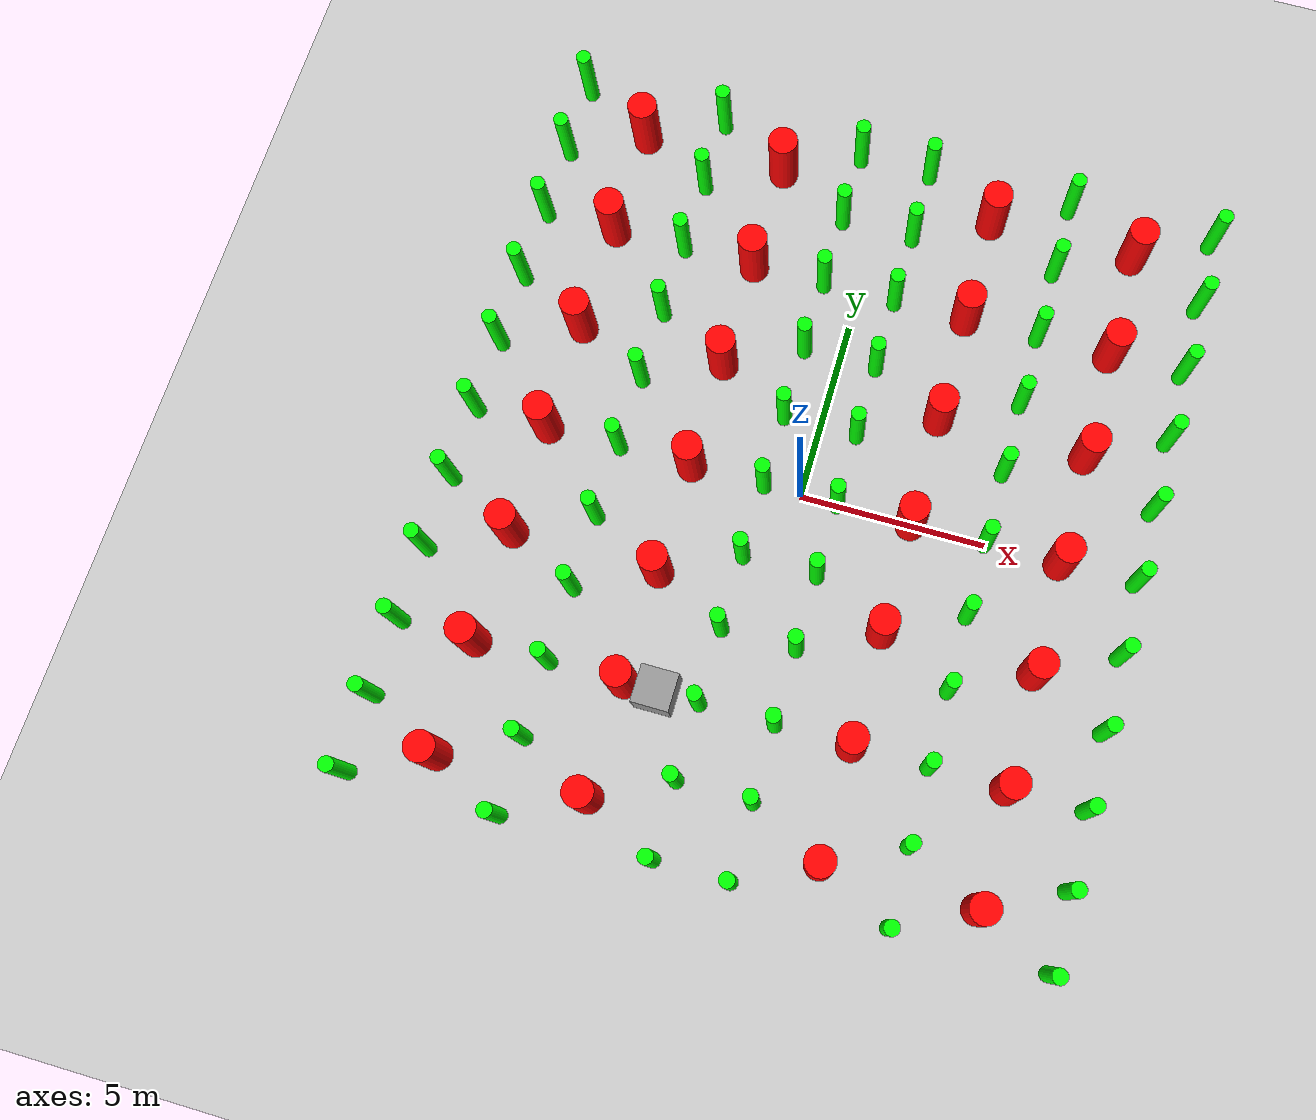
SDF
<sdf version="1.7">
 <world name="custom_grid">
  <light name="sun" type="directional">
   <pose>0 0 10 0 -0 0</pose>
   <diffuse>0.8 0.8 0.8 1</diffuse>
   <specular>0.2 0.2 0.2 1</specular>
   <attenuation>
    <range>1000</range>
    <constant>0.9</constant>
    <linear>0.01</linear>
    <quadratic>0.001</quadratic>
   </attenuation>
   <direction>-0.5 0.1 -0.9</direction>
   <spot><inner_angle>0</inner_angle><outer_angle>0</outer_angle><falloff>0</falloff></spot>
  </light>
  <model name="ground_plane">
   <static>1</static>
   <link name="link">
    <collision name="collision">
     <geometry><plane><normal>0 0 1</normal><size>100 100</size></plane></geometry>
     <surface><friction><ode><mu>100</mu><mu2>50</mu2></ode></friction></surface>
    </collision>
    <visual name="visual">
     <cast_shadows>0</cast_shadows>
     <geometry><plane><normal>0 0 1</normal><size>100 100</size></plane></geometry>
     <material>
      <script><uri>file://media/materials/scripts/gazebo.material</uri><name>Gazebo/Grey</name></script>
     </material>
    </visual>
   </link>
  </model>
  <model name="cylinder_green_-9_-10.0">
   <pose>-9 -10 1 0 -0 0</pose>
   <link name="link">
    <collision name="collision">
     <geometry><cylinder><radius>0.2</radius><length>2</length></cylinder></geometry>
    </collision>
    <visual name="visual">
     <geometry><cylinder><radius>0.2</radius><length>2</length></cylinder></geometry>
     <material><ambient>0 1 0 1</ambient><diffuse>0 1 0 1</diffuse></material>
    </visual>
   </link>
   <static>1</static>
  </model>
  <model name="cylinder_green_-9_-8.0">
   <pose>-9 -8 1 0 -0 0</pose>
   <link name="link">
    <collision name="collision">
     <geometry><cylinder><radius>0.2</radius><length>2</length></cylinder></geometry>
    </collision>
    <visual name="visual">
     <geometry><cylinder><radius>0.2</radius><length>2</length></cylinder></geometry>
     <material><ambient>0 1 0 1</ambient><diffuse>0 1 0 1</diffuse></material>
    </visual>
   </link>
   <static>1</static>
  </model>
  <model name="cylinder_green_-9_-6.0">
   <pose>-9 -6 1 0 -0 0</pose>
   <link name="link">
    <collision name="collision">
     <geometry><cylinder><radius>0.2</radius><length>2</length></cylinder></geometry>
    </collision>
    <visual name="visual">
     <geometry><cylinder><radius>0.2</radius><length>2</length></cylinder></geometry>
     <material><ambient>0 1 0 1</ambient><diffuse>0 1 0 1</diffuse></material>
    </visual>
   </link>
   <static>1</static>
  </model>
  <model name="cylinder_green_-9_-4.0">
   <pose>-9 -4 1 0 -0 0</pose>
   <link name="link">
    <collision name="collision">
     <geometry><cylinder><radius>0.2</radius><length>2</length></cylinder></geometry>
    </collision>
    <visual name="visual">
     <geometry><cylinder><radius>0.2</radius><length>2</length></cylinder></geometry>
     <material><ambient>0 1 0 1</ambient><diffuse>0 1 0 1</diffuse></material>
    </visual>
   </link>
   <static>1</static>
  </model>
  <model name="cylinder_green_-9_-2.0">
   <pose>-9 -2 1 0 -0 0</pose>
   <link name="link">
    <collision name="collision">
     <geometry><cylinder><radius>0.2</radius><length>2</length></cylinder></geometry>
    </collision>
    <visual name="visual">
     <geometry><cylinder><radius>0.2</radius><length>2</length></cylinder></geometry>
     <material><ambient>0 1 0 1</ambient><diffuse>0 1 0 1</diffuse></material>
    </visual>
   </link>
   <static>1</static>
  </model>
  <model name="cylinder_green_-9_0.0">
   <pose>-9 0 1 0 -0 0</pose>
   <link name="link">
    <collision name="collision">
     <geometry><cylinder><radius>0.2</radius><length>2</length></cylinder></geometry>
    </collision>
    <visual name="visual">
     <geometry><cylinder><radius>0.2</radius><length>2</length></cylinder></geometry>
     <material><ambient>0 1 0 1</ambient><diffuse>0 1 0 1</diffuse></material>
    </visual>
   </link>
   <static>1</static>
  </model>
  <model name="cylinder_green_-9_2.0">
   <pose>-9 2 1 0 -0 0</pose>
   <link name="link">
    <collision name="collision">
     <geometry><cylinder><radius>0.2</radius><length>2</length></cylinder></geometry>
    </collision>
    <visual name="visual">
     <geometry><cylinder><radius>0.2</radius><length>2</length></cylinder></geometry>
     <material><ambient>0 1 0 1</ambient><diffuse>0 1 0 1</diffuse></material>
    </visual>
   </link>
   <static>1</static>
  </model>
  <model name="cylinder_green_-9_4.0">
   <pose>-9 4 1 0 -0 0</pose>
   <link name="link">
    <collision name="collision">
     <geometry><cylinder><radius>0.2</radius><length>2</length></cylinder></geometry>
    </collision>
    <visual name="visual">
     <geometry><cylinder><radius>0.2</radius><length>2</length></cylinder></geometry>
     <material><ambient>0 1 0 1</ambient><diffuse>0 1 0 1</diffuse></material>
    </visual>
   </link>
   <static>1</static>
  </model>
  <model name="cylinder_green_-9_6.0">
   <pose>-9 6 1 0 -0 0</pose>
   <link name="link">
    <collision name="collision">
     <geometry><cylinder><radius>0.2</radius><length>2</length></cylinder></geometry>
    </collision>
    <visual name="visual">
     <geometry><cylinder><radius>0.2</radius><length>2</length></cylinder></geometry>
     <material><ambient>0 1 0 1</ambient><diffuse>0 1 0 1</diffuse></material>
    </visual>
   </link>
   <static>1</static>
  </model>
  <model name="cylinder_green_-9_8.0">
   <pose>-9 8 1 0 -0 0</pose>
   <link name="link">
    <collision name="collision">
     <geometry><cylinder><radius>0.2</radius><length>2</length></cylinder></geometry>
    </collision>
    <visual name="visual">
     <geometry><cylinder><radius>0.2</radius><length>2</length></cylinder></geometry>
     <material><ambient>0 1 0 1</ambient><diffuse>0 1 0 1</diffuse></material>
    </visual>
   </link>
   <static>1</static>
  </model>
  <model name="cylinder_green_-9_10.0">
   <pose>-9 10 1 0 -0 0</pose>
   <link name="link">
    <collision name="collision">
     <geometry><cylinder><radius>0.2</radius><length>2</length></cylinder></geometry>
    </collision>
    <visual name="visual">
     <geometry><cylinder><radius>0.2</radius><length>2</length></cylinder></geometry>
     <material><ambient>0 1 0 1</ambient><diffuse>0 1 0 1</diffuse></material>
    </visual>
   </link>
   <static>1</static>
  </model>
  <model name="cylinder_green_-5_-10.0">
   <pose>-5 -10 1 0 -0 0</pose>
   <link name="link">
    <collision name="collision">
     <geometry><cylinder><radius>0.2</radius><length>2</length></cylinder></geometry>
    </collision>
    <visual name="visual">
     <geometry><cylinder><radius>0.2</radius><length>2</length></cylinder></geometry>
     <material><ambient>0 1 0 1</ambient><diffuse>0 1 0 1</diffuse></material>
    </visual>
   </link>
   <static>1</static>
  </model>
  <model name="cylinder_green_-5_-8.0">
   <pose>-5 -8 1 0 -0 0</pose>
   <link name="link">
    <collision name="collision">
     <geometry><cylinder><radius>0.2</radius><length>2</length></cylinder></geometry>
    </collision>
    <visual name="visual">
     <geometry><cylinder><radius>0.2</radius><length>2</length></cylinder></geometry>
     <material><ambient>0 1 0 1</ambient><diffuse>0 1 0 1</diffuse></material>
    </visual>
   </link>
   <static>1</static>
  </model>
  <model name="cylinder_green_-5_-6.0">
   <pose>-5 -6 1 0 -0 0</pose>
   <link name="link">
    <collision name="collision">
     <geometry><cylinder><radius>0.2</radius><length>2</length></cylinder></geometry>
    </collision>
    <visual name="visual">
     <geometry><cylinder><radius>0.2</radius><length>2</length></cylinder></geometry>
     <material><ambient>0 1 0 1</ambient><diffuse>0 1 0 1</diffuse></material>
    </visual>
   </link>
   <static>1</static>
  </model>
  <model name="cylinder_green_-5_-4.0">
   <pose>-5 -4 1 0 -0 0</pose>
   <link name="link">
    <collision name="collision">
     <geometry><cylinder><radius>0.2</radius><length>2</length></cylinder></geometry>
    </collision>
    <visual name="visual">
     <geometry><cylinder><radius>0.2</radius><length>2</length></cylinder></geometry>
     <material><ambient>0 1 0 1</ambient><diffuse>0 1 0 1</diffuse></material>
    </visual>
   </link>
   <static>1</static>
  </model>
  <model name="cylinder_green_-5_-2.0">
   <pose>-5 -2 1 0 -0 0</pose>
   <link name="link">
    <collision name="collision">
     <geometry><cylinder><radius>0.2</radius><length>2</length></cylinder></geometry>
    </collision>
    <visual name="visual">
     <geometry><cylinder><radius>0.2</radius><length>2</length></cylinder></geometry>
     <material><ambient>0 1 0 1</ambient><diffuse>0 1 0 1</diffuse></material>
    </visual>
   </link>
   <static>1</static>
  </model>
  <model name="cylinder_green_-5_0.0">
   <pose>-5 0 1 0 -0 0</pose>
   <link name="link">
    <collision name="collision">
     <geometry><cylinder><radius>0.2</radius><length>2</length></cylinder></geometry>
    </collision>
    <visual name="visual">
     <geometry><cylinder><radius>0.2</radius><length>2</length></cylinder></geometry>
     <material><ambient>0 1 0 1</ambient><diffuse>0 1 0 1</diffuse></material>
    </visual>
   </link>
   <static>1</static>
  </model>
  <model name="cylinder_green_-5_2.0">
   <pose>-5 2 1 0 -0 0</pose>
   <link name="link">
    <collision name="collision">
     <geometry><cylinder><radius>0.2</radius><length>2</length></cylinder></geometry>
    </collision>
    <visual name="visual">
     <geometry><cylinder><radius>0.2</radius><length>2</length></cylinder></geometry>
     <material><ambient>0 1 0 1</ambient><diffuse>0 1 0 1</diffuse></material>
    </visual>
   </link>
   <static>1</static>
  </model>
  <model name="cylinder_green_-5_4.0">
   <pose>-5 4 1 0 -0 0</pose>
   <link name="link">
    <collision name="collision">
     <geometry><cylinder><radius>0.2</radius><length>2</length></cylinder></geometry>
    </collision>
    <visual name="visual">
     <geometry><cylinder><radius>0.2</radius><length>2</length></cylinder></geometry>
     <material><ambient>0 1 0 1</ambient><diffuse>0 1 0 1</diffuse></material>
    </visual>
   </link>
   <static>1</static>
  </model>
  <model name="cylinder_green_-5_6.0">
   <pose>-5 6 1 0 -0 0</pose>
   <link name="link">
    <collision name="collision">
     <geometry><cylinder><radius>0.2</radius><length>2</length></cylinder></geometry>
    </collision>
    <visual name="visual">
     <geometry><cylinder><radius>0.2</radius><length>2</length></cylinder></geometry>
     <material><ambient>0 1 0 1</ambient><diffuse>0 1 0 1</diffuse></material>
    </visual>
   </link>
   <static>1</static>
  </model>
  <model name="cylinder_green_-5_8.0">
   <pose>-5 8 1 0 -0 0</pose>
   <link name="link">
    <collision name="collision">
     <geometry><cylinder><radius>0.2</radius><length>2</length></cylinder></geometry>
    </collision>
    <visual name="visual">
     <geometry><cylinder><radius>0.2</radius><length>2</length></cylinder></geometry>
     <material><ambient>0 1 0 1</ambient><diffuse>0 1 0 1</diffuse></material>
    </visual>
   </link>
   <static>1</static>
  </model>
  <model name="cylinder_green_-5_10.0">
   <pose>-5 10 1 0 -0 0</pose>
   <link name="link">
    <collision name="collision">
     <geometry><cylinder><radius>0.2</radius><length>2</length></cylinder></geometry>
    </collision>
    <visual name="visual">
     <geometry><cylinder><radius>0.2</radius><length>2</length></cylinder></geometry>
     <material><ambient>0 1 0 1</ambient><diffuse>0 1 0 1</diffuse></material>
    </visual>
   </link>
   <static>1</static>
  </model>
  <model name="cylinder_green_-1_-10.0">
   <pose>-1 -10 1 0 -0 0</pose>
   <link name="link">
    <collision name="collision">
     <geometry><cylinder><radius>0.2</radius><length>2</length></cylinder></geometry>
    </collision>
    <visual name="visual">
     <geometry><cylinder><radius>0.2</radius><length>2</length></cylinder></geometry>
     <material><ambient>0 1 0 1</ambient><diffuse>0 1 0 1</diffuse></material>
    </visual>
   </link>
   <static>1</static>
  </model>
  <model name="cylinder_green_-1_-8.0">
   <pose>-1 -8 1 0 -0 0</pose>
   <link name="link">
    <collision name="collision">
     <geometry><cylinder><radius>0.2</radius><length>2</length></cylinder></geometry>
    </collision>
    <visual name="visual">
     <geometry><cylinder><radius>0.2</radius><length>2</length></cylinder></geometry>
     <material><ambient>0 1 0 1</ambient><diffuse>0 1 0 1</diffuse></material>
    </visual>
   </link>
   <static>1</static>
  </model>
  <model name="cylinder_green_-1_-6.0">
   <pose>-1 -6 1 0 -0 0</pose>
   <link name="link">
    <collision name="collision">
     <geometry><cylinder><radius>0.2</radius><length>2</length></cylinder></geometry>
    </collision>
    <visual name="visual">
     <geometry><cylinder><radius>0.2</radius><length>2</length></cylinder></geometry>
     <material><ambient>0 1 0 1</ambient><diffuse>0 1 0 1</diffuse></material>
    </visual>
   </link>
   <static>1</static>
  </model>
  <model name="cylinder_green_-1_-4.0">
   <pose>-1 -4 1 0 -0 0</pose>
   <link name="link">
    <collision name="collision">
     <geometry><cylinder><radius>0.2</radius><length>2</length></cylinder></geometry>
    </collision>
    <visual name="visual">
     <geometry><cylinder><radius>0.2</radius><length>2</length></cylinder></geometry>
     <material><ambient>0 1 0 1</ambient><diffuse>0 1 0 1</diffuse></material>
    </visual>
   </link>
   <static>1</static>
  </model>
  <model name="cylinder_green_-1_-2.0">
   <pose>-1 -2 1 0 -0 0</pose>
   <link name="link">
    <collision name="collision">
     <geometry><cylinder><radius>0.2</radius><length>2</length></cylinder></geometry>
    </collision>
    <visual name="visual">
     <geometry><cylinder><radius>0.2</radius><length>2</length></cylinder></geometry>
     <material><ambient>0 1 0 1</ambient><diffuse>0 1 0 1</diffuse></material>
    </visual>
   </link>
   <static>1</static>
  </model>
  <model name="cylinder_green_-1_0.0">
   <pose>-1 0 1 0 -0 0</pose>
   <link name="link">
    <collision name="collision">
     <geometry><cylinder><radius>0.2</radius><length>2</length></cylinder></geometry>
    </collision>
    <visual name="visual">
     <geometry><cylinder><radius>0.2</radius><length>2</length></cylinder></geometry>
     <material><ambient>0 1 0 1</ambient><diffuse>0 1 0 1</diffuse></material>
    </visual>
   </link>
   <static>1</static>
  </model>
  <model name="cylinder_green_-1_2.0">
   <pose>-1 2 1 0 -0 0</pose>
   <link name="link">
    <collision name="collision">
     <geometry><cylinder><radius>0.2</radius><length>2</length></cylinder></geometry>
    </collision>
    <visual name="visual">
     <geometry><cylinder><radius>0.2</radius><length>2</length></cylinder></geometry>
     <material><ambient>0 1 0 1</ambient><diffuse>0 1 0 1</diffuse></material>
    </visual>
   </link>
   <static>1</static>
  </model>
  <model name="cylinder_green_-1_4.0">
   <pose>-1 4 1 0 -0 0</pose>
   <link name="link">
    <collision name="collision">
     <geometry><cylinder><radius>0.2</radius><length>2</length></cylinder></geometry>
    </collision>
    <visual name="visual">
     <geometry><cylinder><radius>0.2</radius><length>2</length></cylinder></geometry>
     <material><ambient>0 1 0 1</ambient><diffuse>0 1 0 1</diffuse></material>
    </visual>
   </link>
   <static>1</static>
  </model>
  <model name="cylinder_green_-1_6.0">
   <pose>-1 6 1 0 -0 0</pose>
   <link name="link">
    <collision name="collision">
     <geometry><cylinder><radius>0.2</radius><length>2</length></cylinder></geometry>
    </collision>
    <visual name="visual">
     <geometry><cylinder><radius>0.2</radius><length>2</length></cylinder></geometry>
     <material><ambient>0 1 0 1</ambient><diffuse>0 1 0 1</diffuse></material>
    </visual>
   </link>
   <static>1</static>
  </model>
  <model name="cylinder_green_-1_8.0">
   <pose>-1 8 1 0 -0 0</pose>
   <link name="link">
    <collision name="collision">
     <geometry><cylinder><radius>0.2</radius><length>2</length></cylinder></geometry>
    </collision>
    <visual name="visual">
     <geometry><cylinder><radius>0.2</radius><length>2</length></cylinder></geometry>
     <material><ambient>0 1 0 1</ambient><diffuse>0 1 0 1</diffuse></material>
    </visual>
   </link>
   <static>1</static>
  </model>
  <model name="cylinder_green_-1_10.0">
   <pose>-1 10 1 0 -0 0</pose>
   <link name="link">
    <collision name="collision">
     <geometry><cylinder><radius>0.2</radius><length>2</length></cylinder></geometry>
    </collision>
    <visual name="visual">
     <geometry><cylinder><radius>0.2</radius><length>2</length></cylinder></geometry>
     <material><ambient>0 1 0 1</ambient><diffuse>0 1 0 1</diffuse></material>
    </visual>
   </link>
   <static>1</static>
  </model>
  <model name="cylinder_green_1_-10.0">
   <pose>1 -10 1 0 -0 0</pose>
   <link name="link">
    <collision name="collision">
     <geometry><cylinder><radius>0.2</radius><length>2</length></cylinder></geometry>
    </collision>
    <visual name="visual">
     <geometry><cylinder><radius>0.2</radius><length>2</length></cylinder></geometry>
     <material><ambient>0 1 0 1</ambient><diffuse>0 1 0 1</diffuse></material>
    </visual>
   </link>
   <static>1</static>
  </model>
  <model name="cylinder_green_1_-8.0">
   <pose>1 -8 1 0 -0 0</pose>
   <link name="link">
    <collision name="collision">
     <geometry><cylinder><radius>0.2</radius><length>2</length></cylinder></geometry>
    </collision>
    <visual name="visual">
     <geometry><cylinder><radius>0.2</radius><length>2</length></cylinder></geometry>
     <material><ambient>0 1 0 1</ambient><diffuse>0 1 0 1</diffuse></material>
    </visual>
   </link>
   <static>1</static>
  </model>
  <model name="cylinder_green_1_-6.0">
   <pose>1 -6 1 0 -0 0</pose>
   <link name="link">
    <collision name="collision">
     <geometry><cylinder><radius>0.2</radius><length>2</length></cylinder></geometry>
    </collision>
    <visual name="visual">
     <geometry><cylinder><radius>0.2</radius><length>2</length></cylinder></geometry>
     <material><ambient>0 1 0 1</ambient><diffuse>0 1 0 1</diffuse></material>
    </visual>
   </link>
   <static>1</static>
  </model>
  <model name="cylinder_green_1_-4.0">
   <pose>1 -4 1 0 -0 0</pose>
   <link name="link">
    <collision name="collision">
     <geometry><cylinder><radius>0.2</radius><length>2</length></cylinder></geometry>
    </collision>
    <visual name="visual">
     <geometry><cylinder><radius>0.2</radius><length>2</length></cylinder></geometry>
     <material><ambient>0 1 0 1</ambient><diffuse>0 1 0 1</diffuse></material>
    </visual>
   </link>
   <static>1</static>
  </model>
  <model name="cylinder_green_1_-2.0">
   <pose>1 -2 1 0 -0 0</pose>
   <link name="link">
    <collision name="collision">
     <geometry><cylinder><radius>0.2</radius><length>2</length></cylinder></geometry>
    </collision>
    <visual name="visual">
     <geometry><cylinder><radius>0.2</radius><length>2</length></cylinder></geometry>
     <material><ambient>0 1 0 1</ambient><diffuse>0 1 0 1</diffuse></material>
    </visual>
   </link>
   <static>1</static>
  </model>
  <model name="cylinder_green_1_0.0">
   <pose>1 0 1 0 -0 0</pose>
   <link name="link">
    <collision name="collision">
     <geometry><cylinder><radius>0.2</radius><length>2</length></cylinder></geometry>
    </collision>
    <visual name="visual">
     <geometry><cylinder><radius>0.2</radius><length>2</length></cylinder></geometry>
     <material><ambient>0 1 0 1</ambient><diffuse>0 1 0 1</diffuse></material>
    </visual>
   </link>
   <static>1</static>
  </model>
  <model name="cylinder_green_1_2.0">
   <pose>1 2 1 0 -0 0</pose>
   <link name="link">
    <collision name="collision">
     <geometry><cylinder><radius>0.2</radius><length>2</length></cylinder></geometry>
    </collision>
    <visual name="visual">
     <geometry><cylinder><radius>0.2</radius><length>2</length></cylinder></geometry>
     <material><ambient>0 1 0 1</ambient><diffuse>0 1 0 1</diffuse></material>
    </visual>
   </link>
   <static>1</static>
  </model>
  <model name="cylinder_green_1_4.0">
   <pose>1 4 1 0 -0 0</pose>
   <link name="link">
    <collision name="collision">
     <geometry><cylinder><radius>0.2</radius><length>2</length></cylinder></geometry>
    </collision>
    <visual name="visual">
     <geometry><cylinder><radius>0.2</radius><length>2</length></cylinder></geometry>
     <material><ambient>0 1 0 1</ambient><diffuse>0 1 0 1</diffuse></material>
    </visual>
   </link>
   <static>1</static>
  </model>
  <model name="cylinder_green_1_6.0">
   <pose>1 6 1 0 -0 0</pose>
   <link name="link">
    <collision name="collision">
     <geometry><cylinder><radius>0.2</radius><length>2</length></cylinder></geometry>
    </collision>
    <visual name="visual">
     <geometry><cylinder><radius>0.2</radius><length>2</length></cylinder></geometry>
     <material><ambient>0 1 0 1</ambient><diffuse>0 1 0 1</diffuse></material>
    </visual>
   </link>
   <static>1</static>
  </model>
  <model name="cylinder_green_1_8.0">
   <pose>1 8 1 0 -0 0</pose>
   <link name="link">
    <collision name="collision">
     <geometry><cylinder><radius>0.2</radius><length>2</length></cylinder></geometry>
    </collision>
    <visual name="visual">
     <geometry><cylinder><radius>0.2</radius><length>2</length></cylinder></geometry>
     <material><ambient>0 1 0 1</ambient><diffuse>0 1 0 1</diffuse></material>
    </visual>
   </link>
   <static>1</static>
  </model>
  <model name="cylinder_green_1_10.0">
   <pose>1 10 1 0 -0 0</pose>
   <link name="link">
    <collision name="collision">
     <geometry><cylinder><radius>0.2</radius><length>2</length></cylinder></geometry>
    </collision>
    <visual name="visual">
     <geometry><cylinder><radius>0.2</radius><length>2</length></cylinder></geometry>
     <material><ambient>0 1 0 1</ambient><diffuse>0 1 0 1</diffuse></material>
    </visual>
   </link>
   <static>1</static>
  </model>
  <model name="cylinder_green_5_-10.0">
   <pose>5 -10 1 0 -0 0</pose>
   <link name="link">
    <collision name="collision">
     <geometry><cylinder><radius>0.2</radius><length>2</length></cylinder></geometry>
    </collision>
    <visual name="visual">
     <geometry><cylinder><radius>0.2</radius><length>2</length></cylinder></geometry>
     <material><ambient>0 1 0 1</ambient><diffuse>0 1 0 1</diffuse></material>
    </visual>
   </link>
   <static>1</static>
  </model>
  <model name="cylinder_green_5_-8.0">
   <pose>5 -8 1 0 -0 0</pose>
   <link name="link">
    <collision name="collision">
     <geometry><cylinder><radius>0.2</radius><length>2</length></cylinder></geometry>
    </collision>
    <visual name="visual">
     <geometry><cylinder><radius>0.2</radius><length>2</length></cylinder></geometry>
     <material><ambient>0 1 0 1</ambient><diffuse>0 1 0 1</diffuse></material>
    </visual>
   </link>
   <static>1</static>
  </model>
  <model name="cylinder_green_5_-6.0">
   <pose>5 -6 1 0 -0 0</pose>
   <link name="link">
    <collision name="collision">
     <geometry><cylinder><radius>0.2</radius><length>2</length></cylinder></geometry>
    </collision>
    <visual name="visual">
     <geometry><cylinder><radius>0.2</radius><length>2</length></cylinder></geometry>
     <material><ambient>0 1 0 1</ambient><diffuse>0 1 0 1</diffuse></material>
    </visual>
   </link>
   <static>1</static>
  </model>
  <model name="cylinder_green_5_-4.0">
   <pose>5 -4 1 0 -0 0</pose>
   <link name="link">
    <collision name="collision">
     <geometry><cylinder><radius>0.2</radius><length>2</length></cylinder></geometry>
    </collision>
    <visual name="visual">
     <geometry><cylinder><radius>0.2</radius><length>2</length></cylinder></geometry>
     <material><ambient>0 1 0 1</ambient><diffuse>0 1 0 1</diffuse></material>
    </visual>
   </link>
   <static>1</static>
  </model>
  <model name="cylinder_green_5_-2.0">
   <pose>5 -2 1 0 -0 0</pose>
   <link name="link">
    <collision name="collision">
     <geometry><cylinder><radius>0.2</radius><length>2</length></cylinder></geometry>
    </collision>
    <visual name="visual">
     <geometry><cylinder><radius>0.2</radius><length>2</length></cylinder></geometry>
     <material><ambient>0 1 0 1</ambient><diffuse>0 1 0 1</diffuse></material>
    </visual>
   </link>
   <static>1</static>
  </model>
  <model name="cylinder_green_5_0.0">
   <pose>5 0 1 0 -0 0</pose>
   <link name="link">
    <collision name="collision">
     <geometry><cylinder><radius>0.2</radius><length>2</length></cylinder></geometry>
    </collision>
    <visual name="visual">
     <geometry><cylinder><radius>0.2</radius><length>2</length></cylinder></geometry>
     <material><ambient>0 1 0 1</ambient><diffuse>0 1 0 1</diffuse></material>
    </visual>
   </link>
   <static>1</static>
  </model>
  <model name="cylinder_green_5_2.0">
   <pose>5 2 1 0 -0 0</pose>
   <link name="link">
    <collision name="collision">
     <geometry><cylinder><radius>0.2</radius><length>2</length></cylinder></geometry>
    </collision>
    <visual name="visual">
     <geometry><cylinder><radius>0.2</radius><length>2</length></cylinder></geometry>
     <material><ambient>0 1 0 1</ambient><diffuse>0 1 0 1</diffuse></material>
    </visual>
   </link>
   <static>1</static>
  </model>
  <model name="cylinder_green_5_4.0">
   <pose>5 4 1 0 -0 0</pose>
   <link name="link">
    <collision name="collision">
     <geometry><cylinder><radius>0.2</radius><length>2</length></cylinder></geometry>
    </collision>
    <visual name="visual">
     <geometry><cylinder><radius>0.2</radius><length>2</length></cylinder></geometry>
     <material><ambient>0 1 0 1</ambient><diffuse>0 1 0 1</diffuse></material>
    </visual>
   </link>
   <static>1</static>
  </model>
  <model name="cylinder_green_5_6.0">
   <pose>5 6 1 0 -0 0</pose>
   <link name="link">
    <collision name="collision">
     <geometry><cylinder><radius>0.2</radius><length>2</length></cylinder></geometry>
    </collision>
    <visual name="visual">
     <geometry><cylinder><radius>0.2</radius><length>2</length></cylinder></geometry>
     <material><ambient>0 1 0 1</ambient><diffuse>0 1 0 1</diffuse></material>
    </visual>
   </link>
   <static>1</static>
  </model>
  <model name="cylinder_green_5_8.0">
   <pose>5 8 1 0 -0 0</pose>
   <link name="link">
    <collision name="collision">
     <geometry><cylinder><radius>0.2</radius><length>2</length></cylinder></geometry>
    </collision>
    <visual name="visual">
     <geometry><cylinder><radius>0.2</radius><length>2</length></cylinder></geometry>
     <material><ambient>0 1 0 1</ambient><diffuse>0 1 0 1</diffuse></material>
    </visual>
   </link>
   <static>1</static>
  </model>
  <model name="cylinder_green_5_10.0">
   <pose>5 10 1 0 -0 0</pose>
   <link name="link">
    <collision name="collision">
     <geometry><cylinder><radius>0.2</radius><length>2</length></cylinder></geometry>
    </collision>
    <visual name="visual">
     <geometry><cylinder><radius>0.2</radius><length>2</length></cylinder></geometry>
     <material><ambient>0 1 0 1</ambient><diffuse>0 1 0 1</diffuse></material>
    </visual>
   </link>
   <static>1</static>
  </model>
  <model name="cylinder_green_9_-10.0">
   <pose>9 -10 1 0 -0 0</pose>
   <link name="link">
    <collision name="collision">
     <geometry><cylinder><radius>0.2</radius><length>2</length></cylinder></geometry>
    </collision>
    <visual name="visual">
     <geometry><cylinder><radius>0.2</radius><length>2</length></cylinder></geometry>
     <material><ambient>0 1 0 1</ambient><diffuse>0 1 0 1</diffuse></material>
    </visual>
   </link>
   <static>1</static>
  </model>
  <model name="cylinder_green_9_-8.0">
   <pose>9 -8 1 0 -0 0</pose>
   <link name="link">
    <collision name="collision">
     <geometry><cylinder><radius>0.2</radius><length>2</length></cylinder></geometry>
    </collision>
    <visual name="visual">
     <geometry><cylinder><radius>0.2</radius><length>2</length></cylinder></geometry>
     <material><ambient>0 1 0 1</ambient><diffuse>0 1 0 1</diffuse></material>
    </visual>
   </link>
   <static>1</static>
  </model>
  <model name="cylinder_green_9_-6.0">
   <pose>9 -6 1 0 -0 0</pose>
   <link name="link">
    <collision name="collision">
     <geometry><cylinder><radius>0.2</radius><length>2</length></cylinder></geometry>
    </collision>
    <visual name="visual">
     <geometry><cylinder><radius>0.2</radius><length>2</length></cylinder></geometry>
     <material><ambient>0 1 0 1</ambient><diffuse>0 1 0 1</diffuse></material>
    </visual>
   </link>
   <static>1</static>
  </model>
  <model name="cylinder_green_9_-4.0">
   <pose>9 -4 1 0 -0 0</pose>
   <link name="link">
    <collision name="collision">
     <geometry><cylinder><radius>0.2</radius><length>2</length></cylinder></geometry>
    </collision>
    <visual name="visual">
     <geometry><cylinder><radius>0.2</radius><length>2</length></cylinder></geometry>
     <material><ambient>0 1 0 1</ambient><diffuse>0 1 0 1</diffuse></material>
    </visual>
   </link>
   <static>1</static>
  </model>
  <model name="cylinder_green_9_-2.0">
   <pose>9 -2 1 0 -0 0</pose>
   <link name="link">
    <collision name="collision">
     <geometry><cylinder><radius>0.2</radius><length>2</length></cylinder></geometry>
    </collision>
    <visual name="visual">
     <geometry><cylinder><radius>0.2</radius><length>2</length></cylinder></geometry>
     <material><ambient>0 1 0 1</ambient><diffuse>0 1 0 1</diffuse></material>
    </visual>
   </link>
   <static>1</static>
  </model>
  <model name="cylinder_green_9_0.0">
   <pose>9 0 1 0 -0 0</pose>
   <link name="link">
    <collision name="collision">
     <geometry><cylinder><radius>0.2</radius><length>2</length></cylinder></geometry>
    </collision>
    <visual name="visual">
     <geometry><cylinder><radius>0.2</radius><length>2</length></cylinder></geometry>
     <material><ambient>0 1 0 1</ambient><diffuse>0 1 0 1</diffuse></material>
    </visual>
   </link>
   <static>1</static>
  </model>
  <model name="cylinder_green_9_2.0">
   <pose>9 2 1 0 -0 0</pose>
   <link name="link">
    <collision name="collision">
     <geometry><cylinder><radius>0.2</radius><length>2</length></cylinder></geometry>
    </collision>
    <visual name="visual">
     <geometry><cylinder><radius>0.2</radius><length>2</length></cylinder></geometry>
     <material><ambient>0 1 0 1</ambient><diffuse>0 1 0 1</diffuse></material>
    </visual>
   </link>
   <static>1</static>
  </model>
  <model name="cylinder_green_9_4.0">
   <pose>9 4 1 0 -0 0</pose>
   <link name="link">
    <collision name="collision">
     <geometry><cylinder><radius>0.2</radius><length>2</length></cylinder></geometry>
    </collision>
    <visual name="visual">
     <geometry><cylinder><radius>0.2</radius><length>2</length></cylinder></geometry>
     <material><ambient>0 1 0 1</ambient><diffuse>0 1 0 1</diffuse></material>
    </visual>
   </link>
   <static>1</static>
  </model>
  <model name="cylinder_green_9_6.0">
   <pose>9 6 1 0 -0 0</pose>
   <link name="link">
    <collision name="collision">
     <geometry><cylinder><radius>0.2</radius><length>2</length></cylinder></geometry>
    </collision>
    <visual name="visual">
     <geometry><cylinder><radius>0.2</radius><length>2</length></cylinder></geometry>
     <material><ambient>0 1 0 1</ambient><diffuse>0 1 0 1</diffuse></material>
    </visual>
   </link>
   <static>1</static>
  </model>
  <model name="cylinder_green_9_8.0">
   <pose>9 8 1 0 -0 0</pose>
   <link name="link">
    <collision name="collision">
     <geometry><cylinder><radius>0.2</radius><length>2</length></cylinder></geometry>
    </collision>
    <visual name="visual">
     <geometry><cylinder><radius>0.2</radius><length>2</length></cylinder></geometry>
     <material><ambient>0 1 0 1</ambient><diffuse>0 1 0 1</diffuse></material>
    </visual>
   </link>
   <static>1</static>
  </model>
  <model name="cylinder_green_9_10.0">
   <pose>9 10 1 0 -0 0</pose>
   <link name="link">
    <collision name="collision">
     <geometry><cylinder><radius>0.2</radius><length>2</length></cylinder></geometry>
    </collision>
    <visual name="visual">
     <geometry><cylinder><radius>0.2</radius><length>2</length></cylinder></geometry>
     <material><ambient>0 1 0 1</ambient><diffuse>0 1 0 1</diffuse></material>
    </visual>
   </link>
   <static>1</static>
  </model>
  <model name="cylinder_red_-7_-9.0">
   <pose>-7 -9 1 0 -0 0</pose>
   <link name="link">
    <collision name="collision">
     <geometry><cylinder><radius>0.4</radius><length>2</length></cylinder></geometry>
    </collision>
    <visual name="visual">
     <geometry><cylinder><radius>0.4</radius><length>2</length></cylinder></geometry>
     <material><ambient>1 0 0 1</ambient><diffuse>1 0 0 1</diffuse></material>
    </visual>
   </link>
   <static>1</static>
  </model>
  <model name="cylinder_red_-7_-6.0">
   <pose>-7 -6 1 0 -0 0</pose>
   <link name="link">
    <collision name="collision">
     <geometry><cylinder><radius>0.4</radius><length>2</length></cylinder></geometry>
    </collision>
    <visual name="visual">
     <geometry><cylinder><radius>0.4</radius><length>2</length></cylinder></geometry>
     <material><ambient>1 0 0 1</ambient><diffuse>1 0 0 1</diffuse></material>
    </visual>
   </link>
   <static>1</static>
  </model>
  <model name="cylinder_red_-7_-3.0">
   <pose>-7 -3 1 0 -0 0</pose>
   <link name="link">
    <collision name="collision">
     <geometry><cylinder><radius>0.4</radius><length>2</length></cylinder></geometry>
    </collision>
    <visual name="visual">
     <geometry><cylinder><radius>0.4</radius><length>2</length></cylinder></geometry>
     <material><ambient>1 0 0 1</ambient><diffuse>1 0 0 1</diffuse></material>
    </visual>
   </link>
   <static>1</static>
  </model>
  <model name="cylinder_red_-7_0.0">
   <pose>-7 0 1 0 -0 0</pose>
   <link name="link">
    <collision name="collision">
     <geometry><cylinder><radius>0.4</radius><length>2</length></cylinder></geometry>
    </collision>
    <visual name="visual">
     <geometry><cylinder><radius>0.4</radius><length>2</length></cylinder></geometry>
     <material><ambient>1 0 0 1</ambient><diffuse>1 0 0 1</diffuse></material>
    </visual>
   </link>
   <static>1</static>
  </model>
  <model name="cylinder_red_-7_3.0">
   <pose>-7 3 1 0 -0 0</pose>
   <link name="link">
    <collision name="collision">
     <geometry><cylinder><radius>0.4</radius><length>2</length></cylinder></geometry>
    </collision>
    <visual name="visual">
     <geometry><cylinder><radius>0.4</radius><length>2</length></cylinder></geometry>
     <material><ambient>1 0 0 1</ambient><diffuse>1 0 0 1</diffuse></material>
    </visual>
   </link>
   <static>1</static>
  </model>
  <model name="cylinder_red_-7_6.0">
   <pose>-7 6 1 0 -0 0</pose>
   <link name="link">
    <collision name="collision">
     <geometry><cylinder><radius>0.4</radius><length>2</length></cylinder></geometry>
    </collision>
    <visual name="visual">
     <geometry><cylinder><radius>0.4</radius><length>2</length></cylinder></geometry>
     <material><ambient>1 0 0 1</ambient><diffuse>1 0 0 1</diffuse></material>
    </visual>
   </link>
   <static>1</static>
  </model>
  <model name="cylinder_red_-7_9.0">
   <pose>-7 9 1 0 -0 0</pose>
   <link name="link">
    <collision name="collision">
     <geometry><cylinder><radius>0.4</radius><length>2</length></cylinder></geometry>
    </collision>
    <visual name="visual">
     <geometry><cylinder><radius>0.4</radius><length>2</length></cylinder></geometry>
     <material><ambient>1 0 0 1</ambient><diffuse>1 0 0 1</diffuse></material>
    </visual>
   </link>
   <static>1</static>
  </model>
  <model name="cylinder_red_-3_-9.0">
   <pose>-3 -9 1 0 -0 0</pose>
   <link name="link">
    <collision name="collision">
     <geometry><cylinder><radius>0.4</radius><length>2</length></cylinder></geometry>
    </collision>
    <visual name="visual">
     <geometry><cylinder><radius>0.4</radius><length>2</length></cylinder></geometry>
     <material><ambient>1 0 0 1</ambient><diffuse>1 0 0 1</diffuse></material>
    </visual>
   </link>
   <static>1</static>
  </model>
  <model name="cylinder_red_-3_-6.0">
   <pose>-3 -6 1 0 -0 0</pose>
   <link name="link">
    <collision name="collision">
     <geometry><cylinder><radius>0.4</radius><length>2</length></cylinder></geometry>
    </collision>
    <visual name="visual">
     <geometry><cylinder><radius>0.4</radius><length>2</length></cylinder></geometry>
     <material><ambient>1 0 0 1</ambient><diffuse>1 0 0 1</diffuse></material>
    </visual>
   </link>
   <static>1</static>
  </model>
  <model name="cylinder_red_-3_-3.0">
   <pose>-3 -3 1 0 -0 0</pose>
   <link name="link">
    <collision name="collision">
     <geometry><cylinder><radius>0.4</radius><length>2</length></cylinder></geometry>
    </collision>
    <visual name="visual">
     <geometry><cylinder><radius>0.4</radius><length>2</length></cylinder></geometry>
     <material><ambient>1 0 0 1</ambient><diffuse>1 0 0 1</diffuse></material>
    </visual>
   </link>
   <static>1</static>
  </model>
  <model name="cylinder_red_-3_0.0">
   <pose>-3 0 1 0 -0 0</pose>
   <link name="link">
    <collision name="collision">
     <geometry><cylinder><radius>0.4</radius><length>2</length></cylinder></geometry>
    </collision>
    <visual name="visual">
     <geometry><cylinder><radius>0.4</radius><length>2</length></cylinder></geometry>
     <material><ambient>1 0 0 1</ambient><diffuse>1 0 0 1</diffuse></material>
    </visual>
   </link>
   <static>1</static>
  </model>
  <model name="cylinder_red_-3_3.0">
   <pose>-3 3 1 0 -0 0</pose>
   <link name="link">
    <collision name="collision">
     <geometry><cylinder><radius>0.4</radius><length>2</length></cylinder></geometry>
    </collision>
    <visual name="visual">
     <geometry><cylinder><radius>0.4</radius><length>2</length></cylinder></geometry>
     <material><ambient>1 0 0 1</ambient><diffuse>1 0 0 1</diffuse></material>
    </visual>
   </link>
   <static>1</static>
  </model>
  <model name="cylinder_red_-3_6.0">
   <pose>-3 6 1 0 -0 0</pose>
   <link name="link">
    <collision name="collision">
     <geometry><cylinder><radius>0.4</radius><length>2</length></cylinder></geometry>
    </collision>
    <visual name="visual">
     <geometry><cylinder><radius>0.4</radius><length>2</length></cylinder></geometry>
     <material><ambient>1 0 0 1</ambient><diffuse>1 0 0 1</diffuse></material>
    </visual>
   </link>
   <static>1</static>
  </model>
  <model name="cylinder_red_-3_9.0">
   <pose>-3 9 1 0 -0 0</pose>
   <link name="link">
    <collision name="collision">
     <geometry><cylinder><radius>0.4</radius><length>2</length></cylinder></geometry>
    </collision>
    <visual name="visual">
     <geometry><cylinder><radius>0.4</radius><length>2</length></cylinder></geometry>
     <material><ambient>1 0 0 1</ambient><diffuse>1 0 0 1</diffuse></material>
    </visual>
   </link>
   <static>1</static>
  </model>
  <model name="cylinder_red_3_-9.0">
   <pose>3 -9 1 0 -0 0</pose>
   <link name="link">
    <collision name="collision">
     <geometry><cylinder><radius>0.4</radius><length>2</length></cylinder></geometry>
    </collision>
    <visual name="visual">
     <geometry><cylinder><radius>0.4</radius><length>2</length></cylinder></geometry>
     <material><ambient>1 0 0 1</ambient><diffuse>1 0 0 1</diffuse></material>
    </visual>
   </link>
   <static>1</static>
  </model>
  <model name="cylinder_red_3_-6.0">
   <pose>3 -6 1 0 -0 0</pose>
   <link name="link">
    <collision name="collision">
     <geometry><cylinder><radius>0.4</radius><length>2</length></cylinder></geometry>
    </collision>
    <visual name="visual">
     <geometry><cylinder><radius>0.4</radius><length>2</length></cylinder></geometry>
     <material><ambient>1 0 0 1</ambient><diffuse>1 0 0 1</diffuse></material>
    </visual>
   </link>
   <static>1</static>
  </model>
  <model name="cylinder_red_3_-3.0">
   <pose>3 -3 1 0 -0 0</pose>
   <link name="link">
    <collision name="collision">
     <geometry><cylinder><radius>0.4</radius><length>2</length></cylinder></geometry>
    </collision>
    <visual name="visual">
     <geometry><cylinder><radius>0.4</radius><length>2</length></cylinder></geometry>
     <material><ambient>1 0 0 1</ambient><diffuse>1 0 0 1</diffuse></material>
    </visual>
   </link>
   <static>1</static>
  </model>
  <model name="cylinder_red_3_0.0">
   <pose>3 0 1 0 -0 0</pose>
   <link name="link">
    <collision name="collision">
     <geometry><cylinder><radius>0.4</radius><length>2</length></cylinder></geometry>
    </collision>
    <visual name="visual">
     <geometry><cylinder><radius>0.4</radius><length>2</length></cylinder></geometry>
     <material><ambient>1 0 0 1</ambient><diffuse>1 0 0 1</diffuse></material>
    </visual>
   </link>
   <static>1</static>
  </model>
  <model name="cylinder_red_3_3.0">
   <pose>3 3 1 0 -0 0</pose>
   <link name="link">
    <collision name="collision">
     <geometry><cylinder><radius>0.4</radius><length>2</length></cylinder></geometry>
    </collision>
    <visual name="visual">
     <geometry><cylinder><radius>0.4</radius><length>2</length></cylinder></geometry>
     <material><ambient>1 0 0 1</ambient><diffuse>1 0 0 1</diffuse></material>
    </visual>
   </link>
   <static>1</static>
  </model>
  <model name="cylinder_red_3_6.0">
   <pose>3 6 1 0 -0 0</pose>
   <link name="link">
    <collision name="collision">
     <geometry><cylinder><radius>0.4</radius><length>2</length></cylinder></geometry>
    </collision>
    <visual name="visual">
     <geometry><cylinder><radius>0.4</radius><length>2</length></cylinder></geometry>
     <material><ambient>1 0 0 1</ambient><diffuse>1 0 0 1</diffuse></material>
    </visual>
   </link>
   <static>1</static>
  </model>
  <model name="cylinder_red_3_9.0">
   <pose>3 9 1 0 -0 0</pose>
   <link name="link">
    <collision name="collision">
     <geometry><cylinder><radius>0.4</radius><length>2</length></cylinder></geometry>
    </collision>
    <visual name="visual">
     <geometry><cylinder><radius>0.4</radius><length>2</length></cylinder></geometry>
     <material><ambient>1 0 0 1</ambient><diffuse>1 0 0 1</diffuse></material>
    </visual>
   </link>
   <static>1</static>
  </model>
  <model name="cylinder_red_7_-9.0">
   <pose>7 -9 1 0 -0 0</pose>
   <link name="link">
    <collision name="collision">
     <geometry><cylinder><radius>0.4</radius><length>2</length></cylinder></geometry>
    </collision>
    <visual name="visual">
     <geometry><cylinder><radius>0.4</radius><length>2</length></cylinder></geometry>
     <material><ambient>1 0 0 1</ambient><diffuse>1 0 0 1</diffuse></material>
    </visual>
   </link>
   <static>1</static>
  </model>
  <model name="cylinder_red_7_-6.0">
   <pose>7 -6 1 0 -0 0</pose>
   <link name="link">
    <collision name="collision">
     <geometry><cylinder><radius>0.4</radius><length>2</length></cylinder></geometry>
    </collision>
    <visual name="visual">
     <geometry><cylinder><radius>0.4</radius><length>2</length></cylinder></geometry>
     <material><ambient>1 0 0 1</ambient><diffuse>1 0 0 1</diffuse></material>
    </visual>
   </link>
   <static>1</static>
  </model>
  <model name="cylinder_red_7_-3.0">
   <pose>7 -3 1 0 -0 0</pose>
   <link name="link">
    <collision name="collision">
     <geometry><cylinder><radius>0.4</radius><length>2</length></cylinder></geometry>
    </collision>
    <visual name="visual">
     <geometry><cylinder><radius>0.4</radius><length>2</length></cylinder></geometry>
     <material><ambient>1 0 0 1</ambient><diffuse>1 0 0 1</diffuse></material>
    </visual>
   </link>
   <static>1</static>
  </model>
  <model name="cylinder_red_7_0.0">
   <pose>7 0 1 0 -0 0</pose>
   <link name="link">
    <collision name="collision">
     <geometry><cylinder><radius>0.4</radius><length>2</length></cylinder></geometry>
    </collision>
    <visual name="visual">
     <geometry><cylinder><radius>0.4</radius><length>2</length></cylinder></geometry>
     <material><ambient>1 0 0 1</ambient><diffuse>1 0 0 1</diffuse></material>
    </visual>
   </link>
   <static>1</static>
  </model>
  <model name="cylinder_red_7_3.0">
   <pose>7 3 1 0 -0 0</pose>
   <link name="link">
    <collision name="collision">
     <geometry><cylinder><radius>0.4</radius><length>2</length></cylinder></geometry>
    </collision>
    <visual name="visual">
     <geometry><cylinder><radius>0.4</radius><length>2</length></cylinder></geometry>
     <material><ambient>1 0 0 1</ambient><diffuse>1 0 0 1</diffuse></material>
    </visual>
   </link>
   <static>1</static>
  </model>
  <model name="cylinder_red_7_6.0">
   <pose>7 6 1 0 -0 0</pose>
   <link name="link">
    <collision name="collision">
     <geometry><cylinder><radius>0.4</radius><length>2</length></cylinder></geometry>
    </collision>
    <visual name="visual">
     <geometry><cylinder><radius>0.4</radius><length>2</length></cylinder></geometry>
     <material><ambient>1 0 0 1</ambient><diffuse>1 0 0 1</diffuse></material>
    </visual>
   </link>
   <static>1</static>
  </model>
  <model name="cylinder_red_7_9.0">
   <pose>7 9 1 0 -0 0</pose>
   <link name="link">
    <collision name="collision">
     <geometry><cylinder><radius>0.4</radius><length>2</length></cylinder></geometry>
    </collision>
    <visual name="visual">
     <geometry><cylinder><radius>0.4</radius><length>2</length></cylinder></geometry>
     <material><ambient>1 0 0 1</ambient><diffuse>1 0 0 1</diffuse></material>
    </visual>
   </link>
   <static>1</static>
  </model>
  <gravity>0 0 -9.8</gravity>
  <magnetic_field>6e-06 2.3e-05 -4.2e-05</magnetic_field>
  <atmosphere type="adiabatic"/>
  <physics type="ode">
   <max_step_size>0.001</max_step_size>
   <real_time_factor>1</real_time_factor>
   <real_time_update_rate>1000</real_time_update_rate>
  </physics>
  <scene><ambient>0.4 0.4 0.4 1</ambient><background>0.7 0.7 0.7 1</background><shadows>1</shadows></scene>
  <spherical_coordinates>
   <surface_model>EARTH_WGS84</surface_model>
   <latitude_deg>0</latitude_deg>
   <longitude_deg>0</longitude_deg>
   <elevation>0</elevation>
   <heading_deg>0</heading_deg>
  </spherical_coordinates>
  <model name="unit_box">
   <pose>-2.1 -6.00737 0.499995 -1e-05 0 0</pose>
   <link name="link">
    <inertial>
     <mass>1</mass>
     <inertia>
      <ixx>0.166667</ixx>
      <ixy>0</ixy>
      <ixz>0</ixz>
      <iyy>0.166667</iyy>
      <iyz>0</iyz>
      <izz>0.166667</izz>
     </inertia>
    </inertial>
    <collision name="collision"><geometry><box><size>1 1 1</size></box></geometry></collision>
    <visual name="visual">
     <geometry><box><size>1 1 1</size></box></geometry>
     <material>
      <script><name>Gazebo/Grey</name><uri>file://media/materials/scripts/gazebo.material</uri></script>
     </material>
    </visual>
   </link>
  </model>
 </world>
</sdf>
